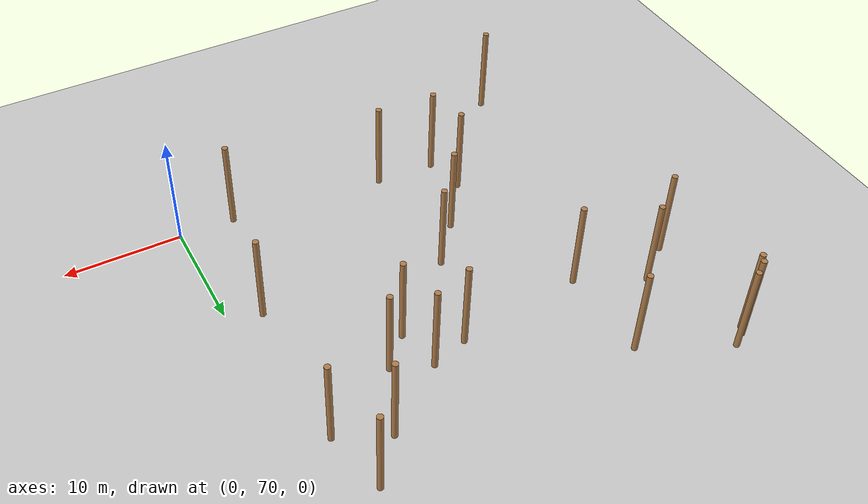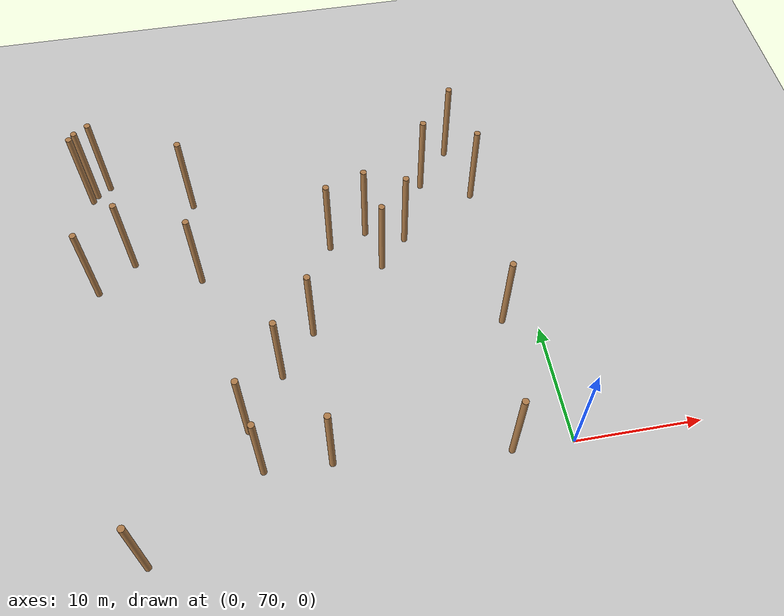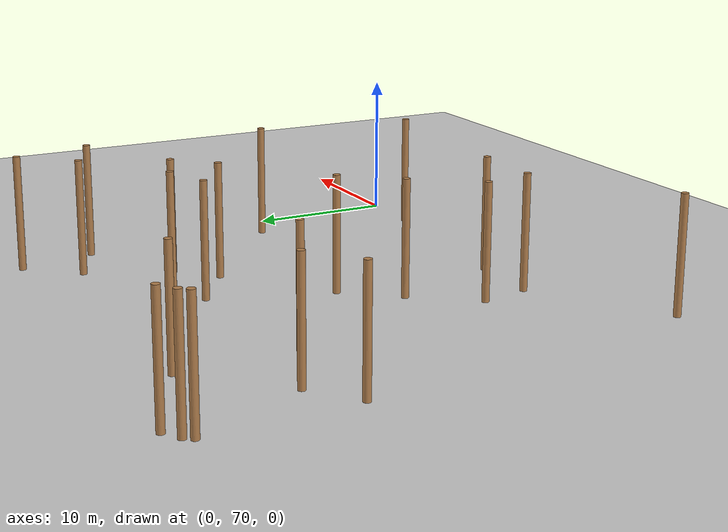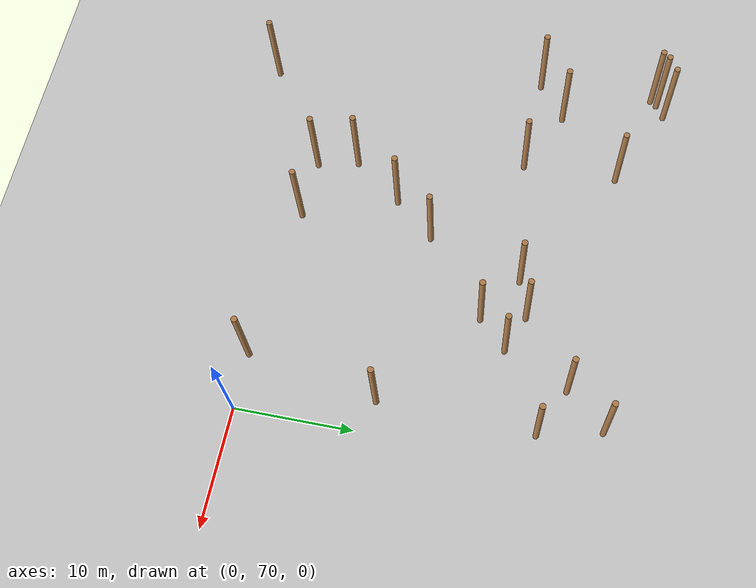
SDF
<sdf version="1.5">
 <world name="padure_tactica">
  <include><uri>model://sun</uri></include>
  <include><uri>model://ground_plane</uri></include>
  <model name="tree_13">
   <static>true</static>
   <pose>-11.43 88.28 4.0 0 0 0</pose>
   <link name="link">
    <collision name="collision">
     <geometry><cylinder><radius>0.25</radius><length>8.0</length></cylinder></geometry>
    </collision>
    <visual name="visual">
     <geometry><cylinder><radius>0.25</radius><length>8.0</length></cylinder></geometry>
     <material>
      <script><uri>file://media/materials/scripts/gazebo.material</uri><name>Gazebo/Wood</name></script>
     </material>
    </visual>
   </link>
  </model>
  <model name="tree_16">
   <static>true</static>
   <pose>-6.56 96.35 4.0 0 0 0</pose>
   <link name="link">
    <collision name="collision">
     <geometry><cylinder><radius>0.25</radius><length>8.0</length></cylinder></geometry>
    </collision>
    <visual name="visual">
     <geometry><cylinder><radius>0.25</radius><length>8.0</length></cylinder></geometry>
     <material>
      <script><uri>file://media/materials/scripts/gazebo.material</uri><name>Gazebo/Wood</name></script>
     </material>
    </visual>
   </link>
  </model>
  <model name="tree_65">
   <static>true</static>
   <pose>-9.05 90.76 4.0 0 0 0</pose>
   <link name="link">
    <collision name="collision">
     <geometry><cylinder><radius>0.25</radius><length>8.0</length></cylinder></geometry>
    </collision>
    <visual name="visual">
     <geometry><cylinder><radius>0.25</radius><length>8.0</length></cylinder></geometry>
     <material>
      <script><uri>file://media/materials/scripts/gazebo.material</uri><name>Gazebo/Wood</name></script>
     </material>
    </visual>
   </link>
  </model>
  <model name="tree_157">
   <static>true</static>
   <pose>-35.30 99.56 4.0 0 0 0</pose>
   <link name="link">
    <collision name="collision">
     <geometry><cylinder><radius>0.25</radius><length>8.0</length></cylinder></geometry>
    </collision>
    <visual name="visual">
     <geometry><cylinder><radius>0.25</radius><length>8.0</length></cylinder></geometry>
     <material>
      <script><uri>file://media/materials/scripts/gazebo.material</uri><name>Gazebo/Wood</name></script>
     </material>
    </visual>
   </link>
  </model>
  <model name="tree_247">
   <static>true</static>
   <pose>-26.45 89.43 4.0 0 0 0</pose>
   <link name="link">
    <collision name="collision">
     <geometry><cylinder><radius>0.25</radius><length>8.0</length></cylinder></geometry>
    </collision>
    <visual name="visual">
     <geometry><cylinder><radius>0.25</radius><length>8.0</length></cylinder></geometry>
     <material>
      <script><uri>file://media/materials/scripts/gazebo.material</uri><name>Gazebo/Wood</name></script>
     </material>
    </visual>
   </link>
  </model>
  <model name="tree_263">
   <static>true</static>
   <pose>-17.98 82.74 4.0 0 0 0</pose>
   <link name="link">
    <collision name="collision">
     <geometry><cylinder><radius>0.25</radius><length>8.0</length></cylinder></geometry>
    </collision>
    <visual name="visual">
     <geometry><cylinder><radius>0.25</radius><length>8.0</length></cylinder></geometry>
     <material>
      <script><uri>file://media/materials/scripts/gazebo.material</uri><name>Gazebo/Wood</name></script>
     </material>
    </visual>
   </link>
  </model>
  <model name="tree_278">
   <static>true</static>
   <pose>-31.79 65.88 4.0 0 0 0</pose>
   <link name="link">
    <collision name="collision">
     <geometry><cylinder><radius>0.25</radius><length>8.0</length></cylinder></geometry>
    </collision>
    <visual name="visual">
     <geometry><cylinder><radius>0.25</radius><length>8.0</length></cylinder></geometry>
     <material>
      <script><uri>file://media/materials/scripts/gazebo.material</uri><name>Gazebo/Wood</name></script>
     </material>
    </visual>
   </link>
  </model>
  <model name="tree_493">
   <static>true</static>
   <pose>-34.93 89.58 4.0 0 0 0</pose>
   <link name="link">
    <collision name="collision">
     <geometry><cylinder><radius>0.25</radius><length>8.0</length></cylinder></geometry>
    </collision>
    <visual name="visual">
     <geometry><cylinder><radius>0.25</radius><length>8.0</length></cylinder></geometry>
     <material>
      <script><uri>file://media/materials/scripts/gazebo.material</uri><name>Gazebo/Wood</name></script>
     </material>
    </visual>
   </link>
  </model>
  <model name="tree_569">
   <static>true</static>
   <pose>-23.16 71.56 4.0 0 0 0</pose>
   <link name="link">
    <collision name="collision">
     <geometry><cylinder><radius>0.25</radius><length>8.0</length></cylinder></geometry>
    </collision>
    <visual name="visual">
     <geometry><cylinder><radius>0.25</radius><length>8.0</length></cylinder></geometry>
     <material>
      <script><uri>file://media/materials/scripts/gazebo.material</uri><name>Gazebo/Wood</name></script>
     </material>
    </visual>
   </link>
  </model>
  <model name="tree_571">
   <static>true</static>
   <pose>-31.90 91.99 4.0 0 0 0</pose>
   <link name="link">
    <collision name="collision">
     <geometry><cylinder><radius>0.25</radius><length>8.0</length></cylinder></geometry>
    </collision>
    <visual name="visual">
     <geometry><cylinder><radius>0.25</radius><length>8.0</length></cylinder></geometry>
     <material>
      <script><uri>file://media/materials/scripts/gazebo.material</uri><name>Gazebo/Wood</name></script>
     </material>
    </visual>
   </link>
  </model>
  <model name="tree_648">
   <static>true</static>
   <pose>-2.41 94.49 4.0 0 0 0</pose>
   <link name="link">
    <collision name="collision">
     <geometry><cylinder><radius>0.25</radius><length>8.0</length></cylinder></geometry>
    </collision>
    <visual name="visual">
     <geometry><cylinder><radius>0.25</radius><length>8.0</length></cylinder></geometry>
     <material>
      <script><uri>file://media/materials/scripts/gazebo.material</uri><name>Gazebo/Wood</name></script>
     </material>
    </visual>
   </link>
  </model>
  <model name="tree_699">
   <static>true</static>
   <pose>-12.25 91.99 4.0 0 0 0</pose>
   <link name="link">
    <collision name="collision">
     <geometry><cylinder><radius>0.25</radius><length>8.0</length></cylinder></geometry>
    </collision>
    <visual name="visual">
     <geometry><cylinder><radius>0.25</radius><length>8.0</length></cylinder></geometry>
     <material>
      <script><uri>file://media/materials/scripts/gazebo.material</uri><name>Gazebo/Wood</name></script>
     </material>
    </visual>
   </link>
  </model>
  <model name="tree_713">
   <static>true</static>
   <pose>-33.82 100.86 4.0 0 0 0</pose>
   <link name="link">
    <collision name="collision">
     <geometry><cylinder><radius>0.25</radius><length>8.0</length></cylinder></geometry>
    </collision>
    <visual name="visual">
     <geometry><cylinder><radius>0.25</radius><length>8.0</length></cylinder></geometry>
     <material>
      <script><uri>file://media/materials/scripts/gazebo.material</uri><name>Gazebo/Wood</name></script>
     </material>
    </visual>
   </link>
  </model>
  <model name="tree_716">
   <static>true</static>
   <pose>-4.74 70.09 4.0 0 0 0</pose>
   <link name="link">
    <collision name="collision">
     <geometry><cylinder><radius>0.25</radius><length>8.0</length></cylinder></geometry>
    </collision>
    <visual name="visual">
     <geometry><cylinder><radius>0.25</radius><length>8.0</length></cylinder></geometry>
     <material>
      <script><uri>file://media/materials/scripts/gazebo.material</uri><name>Gazebo/Wood</name></script>
     </material>
    </visual>
   </link>
  </model>
  <model name="tree_865">
   <static>true</static>
   <pose>-2.75 81.27 4.0 0 0 0</pose>
   <link name="link">
    <collision name="collision">
     <geometry><cylinder><radius>0.25</radius><length>8.0</length></cylinder></geometry>
    </collision>
    <visual name="visual">
     <geometry><cylinder><radius>0.25</radius><length>8.0</length></cylinder></geometry>
     <material>
      <script><uri>file://media/materials/scripts/gazebo.material</uri><name>Gazebo/Wood</name></script>
     </material>
    </visual>
   </link>
  </model>
  <model name="tree_961">
   <static>true</static>
   <pose>-23.94 75.02 4.0 0 0 0</pose>
   <link name="link">
    <collision name="collision">
     <geometry><cylinder><radius>0.25</radius><length>8.0</length></cylinder></geometry>
    </collision>
    <visual name="visual">
     <geometry><cylinder><radius>0.25</radius><length>8.0</length></cylinder></geometry>
     <material>
      <script><uri>file://media/materials/scripts/gazebo.material</uri><name>Gazebo/Wood</name></script>
     </material>
    </visual>
   </link>
  </model>
  <model name="tree_983">
   <static>true</static>
   <pose>-20.87 79.23 4.0 0 0 0</pose>
   <link name="link">
    <collision name="collision">
     <geometry><cylinder><radius>0.25</radius><length>8.0</length></cylinder></geometry>
    </collision>
    <visual name="visual">
     <geometry><cylinder><radius>0.25</radius><length>8.0</length></cylinder></geometry>
     <material>
      <script><uri>file://media/materials/scripts/gazebo.material</uri><name>Gazebo/Wood</name></script>
     </material>
    </visual>
   </link>
  </model>
  <model name="tree_984">
   <static>true</static>
   <pose>-26.66 97.52 4.0 0 0 0</pose>
   <link name="link">
    <collision name="collision">
     <geometry><cylinder><radius>0.25</radius><length>8.0</length></cylinder></geometry>
    </collision>
    <visual name="visual">
     <geometry><cylinder><radius>0.25</radius><length>8.0</length></cylinder></geometry>
     <material>
      <script><uri>file://media/materials/scripts/gazebo.material</uri><name>Gazebo/Wood</name></script>
     </material>
    </visual>
   </link>
  </model>
  <model name="tree_1127">
   <static>true</static>
   <pose>-15.43 90.94 4.0 0 0 0</pose>
   <link name="link">
    <collision name="collision">
     <geometry><cylinder><radius>0.25</radius><length>8.0</length></cylinder></geometry>
    </collision>
    <visual name="visual">
     <geometry><cylinder><radius>0.25</radius><length>8.0</length></cylinder></geometry>
     <material>
      <script><uri>file://media/materials/scripts/gazebo.material</uri><name>Gazebo/Wood</name></script>
     </material>
    </visual>
   </link>
  </model>
  <model name="tree_1156">
   <static>true</static>
   <pose>-34.92 100.12 4.0 0 0 0</pose>
   <link name="link">
    <collision name="collision">
     <geometry><cylinder><radius>0.25</radius><length>8.0</length></cylinder></geometry>
    </collision>
    <visual name="visual">
     <geometry><cylinder><radius>0.25</radius><length>8.0</length></cylinder></geometry>
     <material>
      <script><uri>file://media/materials/scripts/gazebo.material</uri><name>Gazebo/Wood</name></script>
     </material>
    </visual>
   </link>
  </model>
  <model name="tree_1157">
   <static>true</static>
   <pose>-3.66 99.78 4.0 0 0 0</pose>
   <link name="link">
    <collision name="collision">
     <geometry><cylinder><radius>0.25</radius><length>8.0</length></cylinder></geometry>
    </collision>
    <visual name="visual">
     <geometry><cylinder><radius>0.25</radius><length>8.0</length></cylinder></geometry>
     <material>
      <script><uri>file://media/materials/scripts/gazebo.material</uri><name>Gazebo/Wood</name></script>
     </material>
    </visual>
   </link>
  </model>
  <model name="tree_1179">
   <static>true</static>
   <pose>-18.06 71.34 4.0 0 0 0</pose>
   <link name="link">
    <collision name="collision">
     <geometry><cylinder><radius>0.25</radius><length>8.0</length></cylinder></geometry>
    </collision>
    <visual name="visual">
     <geometry><cylinder><radius>0.25</radius><length>8.0</length></cylinder></geometry>
     <material>
      <script><uri>file://media/materials/scripts/gazebo.material</uri><name>Gazebo/Wood</name></script>
     </material>
    </visual>
   </link>
  </model>
 </world>
</sdf>
